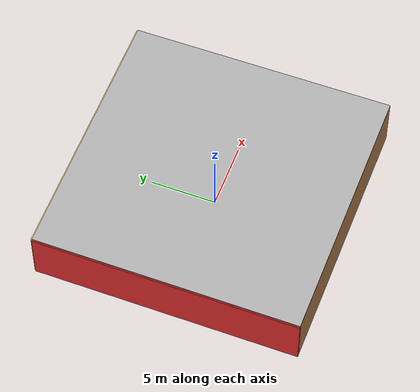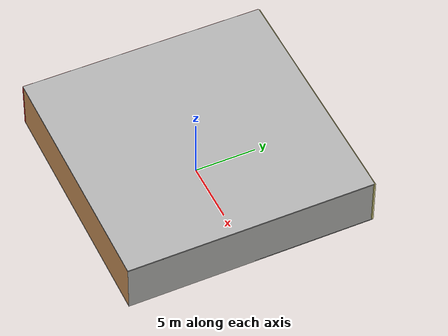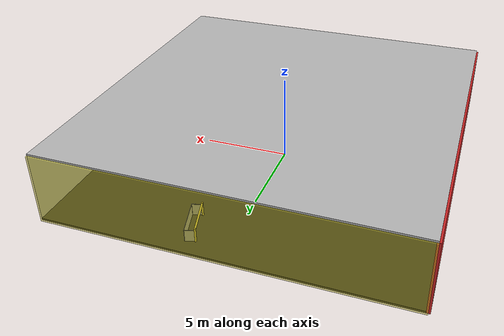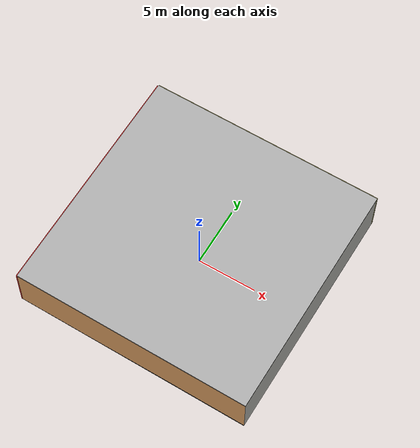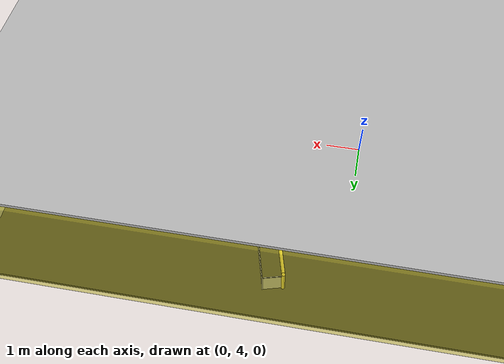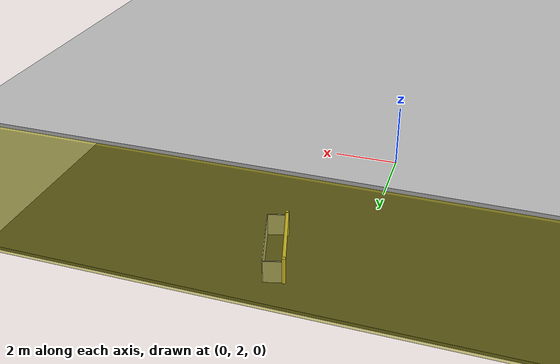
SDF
<sdf version="1.4">
 <world name="default">
  <physics type="ode">
   <max_step_size>0.001</max_step_size>
   <real_time_factor>1</real_time_factor>
   <real_time_update_rate>1000</real_time_update_rate>
   <gravity>0 0 -9.8</gravity>
  </physics>
  <scene><ambient>0.4 0.4 0.4 1</ambient><background>0.7 0.7 0.7 1</background><shadows>1</shadows></scene>
  <model name="Surrounding">
   <static>1</static>
   <link name="Ceiling">
    <collision name="Ceiling_Collision"><geometry><box><size>20 20 0.1</size></box></geometry></collision>
    <visual name="Ceiling_Visual">
     <geometry><box><size>20 20 0.1</size></box></geometry>
     <material>
      <script><uri>file://media/materials/scripts/gazebo.material</uri><name>Gazebo/PioneerBody</name></script>
     </material>
    </visual>
    <pose>0 0 4.05 0 0 0</pose>
   </link>
   <link name="Wall_South">
    <collision name="Wall_South_Collision">
     <geometry><box><size>20 0 4</size></box></geometry>
     <pose>0 0 2 0 -0 0</pose>
    </collision>
    <visual name="Wall_South_Visual">
     <pose>0 0 2 0 -0 0</pose>
     <geometry><box><size>20 0 4</size></box></geometry>
     <material>
      <script><uri>file://media/materials/scripts/gazebo.material</uri><name>Gazebo/WoodPallet</name></script>
     </material>
    </visual>
    <velocity_decay><linear>0</linear><angular>0</angular></velocity_decay>
    <pose>0 -10 0 0 -0 0</pose>
   </link>
   <link name="Wall_East">
    <collision name="Wall_21_Collision">
     <geometry><box><size>20 0 4</size></box></geometry>
     <pose>0 0 2 0 -0 0</pose>
    </collision>
    <visual name="Wall_21_Visual">
     <pose>0 0 2 0 -0 0</pose>
     <geometry><box><size>20 0 4</size></box></geometry>
     <material>
      <script><uri>file://media/materials/scripts/gazebo.material</uri><name>Gazebo/CeilingTiled</name></script>
     </material>
    </visual>
    <velocity_decay><linear>0</linear><angular>0</angular></velocity_decay>
    <pose>10 0 0 0 -0 1.5708</pose>
   </link>
   <link name="Wall_North">
    <collision name="Wall_22_Collision">
     <geometry><box><size>20 0.2 4</size></box></geometry>
     <pose>0 0 2 0 -0 0</pose>
    </collision>
    <visual name="Wall_22_Visual">
     <pose>0 0 2 0 -0 0</pose>
     <geometry><box><size>20 0.2 4</size></box></geometry>
     <material>
      <script>
       <uri>file://media/materials/scripts/gazebo.material</uri>
       <name>Gazebo/YellowTransparent</name>
      </script>
     </material>
    </visual>
    <velocity_decay><linear>0</linear><angular>0</angular></velocity_decay>
    <pose>0 10 0 0 -0 0</pose>
   </link>
   <link name="Wall_West">
    <collision name="Wall_23_Collision">
     <geometry><box><size>20 0.2 4</size></box></geometry>
     <pose>0 0 2 0 -0 0</pose>
    </collision>
    <visual name="Wall_23_Visual">
     <pose>0 0 2 0 -0 0</pose>
     <geometry><box><size>20 0.2 4</size></box></geometry>
     <material>
      <script><uri>file://media/materials/scripts/gazebo.material</uri><name>Gazebo/Red</name></script>
     </material>
    </visual>
    <velocity_decay><linear>0</linear><angular>0</angular></velocity_decay>
    <pose>-10 0 0 0 0 -1.5708</pose>
   </link>
   <link name="Ground_link">
    <collision name="collision">
     <pose>0 0 .05 0 -0 0</pose>
     <geometry><box><size>20 20 0.1</size></box></geometry>
    </collision>
    <visual name="visual">
     <pose>0 0 .05 0 -0 0</pose>
     <geometry><box><size>20 20 0.1</size></box></geometry>
     <material>
      <script><uri>file://media/materials/scripts/gazebo.material</uri><name>Gazebo/FlatBlack</name></script>
     </material>
    </visual>
   </link>
   <static>1</static>
  </model>
  <spherical_coordinates>
   <surface_model>EARTH_WGS84</surface_model>
   <latitude_deg>0</latitude_deg>
   <longitude_deg>0</longitude_deg>
   <elevation>0</elevation>
   <heading_deg>0</heading_deg>
  </spherical_coordinates>
  <light name="lightball_0" type="diffuse">
   <diffuse>0.8 0.8 0.8 1</diffuse>
   <specular>0.2 0.2 0.2 1</specular>
   <attenuation>
    <range>100</range>
    <constant>0.7</constant>
    <linear>0.01</linear>
    <quadratic>0.001</quadratic>
   </attenuation>
   <direction>-0.5 0.1 -0.9</direction>
   <pose>-2.5005998666 8.25666219338 0.761114876043 0 0 0</pose>
  </light>
  <light name="lightball_1" type="diffuse">
   <diffuse>0.8 0.8 0.8 1</diffuse>
   <specular>0.2 0.2 0.2 1</specular>
   <attenuation>
    <range>100</range>
    <constant>0.7</constant>
    <linear>0.01</linear>
    <quadratic>0.001</quadratic>
   </attenuation>
   <direction>-0.5 0.1 -0.9</direction>
   <pose>-1.05981942206 -9.22612729495 2.53616051525 0 0 0</pose>
  </light>
  <light name="lightball_2" type="diffuse">
   <diffuse>0.8 0.8 0.8 1</diffuse>
   <specular>0.2 0.2 0.2 1</specular>
   <attenuation>
    <range>100</range>
    <constant>0.7</constant>
    <linear>0.01</linear>
    <quadratic>0.001</quadratic>
   </attenuation>
   <direction>-0.5 0.1 -0.9</direction>
   <pose>-1.74734822604 7.8332485652 3.75118859989 0 0 0</pose>
  </light>
  <light name="lightball_3" type="diffuse">
   <diffuse>0.8 0.8 0.8 1</diffuse>
   <specular>0.2 0.2 0.2 1</specular>
   <attenuation>
    <range>100</range>
    <constant>0.7</constant>
    <linear>0.01</linear>
    <quadratic>0.001</quadratic>
   </attenuation>
   <direction>-0.5 0.1 -0.9</direction>
   <pose>3.51238275267 6.52715659755 1.5967411184 0 0 0</pose>
  </light>
  <light name="lightball_4" type="diffuse">
   <diffuse>0.8 0.8 0.8 1</diffuse>
   <specular>0.2 0.2 0.2 1</specular>
   <attenuation>
    <range>100</range>
    <constant>0.7</constant>
    <linear>0.01</linear>
    <quadratic>0.001</quadratic>
   </attenuation>
   <direction>-0.5 0.1 -0.9</direction>
   <pose>3.60145485211 5.81481281746 0.653890350153 0 0 0</pose>
  </light>
  <light name="lightball_5" type="diffuse">
   <diffuse>0.8 0.8 0.8 1</diffuse>
   <specular>0.2 0.2 0.2 1</specular>
   <attenuation>
    <range>100</range>
    <constant>0.7</constant>
    <linear>0.01</linear>
    <quadratic>0.001</quadratic>
   </attenuation>
   <direction>-0.5 0.1 -0.9</direction>
   <pose>8.75354196261 -5.92298245434 1.37075871865 0 0 0</pose>
  </light>
  <include>
   <uri>model://construction_cone</uri>
   <pose>-7.92756958915 -5.56721343559 0 0 0 1.64344848755</pose>
  </include>
  <include><uri>model://table</uri><pose>-0.57656628489 0.842580088162 0 0 0 2.7648138061</pose></include>
  <include>
   <uri>model://robocup_3Dsim_goal</uri>
   <pose>1.87203105426 8.05117430459 0 0 0 0.26790536888</pose>
  </include>
  <include>
   <uri>model://construction_cone</uri>
   <pose>4.65318252905 -2.08316898224 0 0 0 1.48890827629</pose>
  </include>
  <include><uri>model://cabinet</uri><pose>5.20695292096 0.354783945325 0 0 0 0.946859672268</pose></include>
 </world>
</sdf>

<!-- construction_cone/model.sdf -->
<sdf version="1.5">
  <model name="Construction Cone">
    <link name="link">
      <collision name="collision">
        <geometry>
          <mesh>
            <scale>10 10 10</scale>
            <uri>file://isr-testbed/construction_cone/meshes/construction_cone.dae</uri>
          </mesh>
        </geometry>
      </collision>
      <visual name="visual">
        <geometry>
          <mesh>
            <scale>10 10 10</scale>
            <uri>file://isr-testbed/construction_cone/meshes/construction_cone.dae</uri>
          </mesh>
        </geometry>
      </visual>
    </link>
  </model>
</sdf>

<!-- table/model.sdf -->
<sdf version="1.5">
  <model name="table">
    <static>true</static>
    <link name="link">
      <collision name="surface">
        <pose>0 0 1.0 0 0 0</pose>
        <geometry>
          <box>
            <size>1.5 0.8 0.03</size>
          </box>
        </geometry>
        <surface>
          <friction>
            <ode>
              <mu>0.6</mu>
              <mu2>0.6</mu2>
            </ode>
          </friction>
        </surface>
      </collision>
      <visual name="visual1">
        <pose>0 0 1.0 0 0 0</pose>
        <geometry>
          <box>
            <size>1.5 0.8 0.03</size>
          </box>
        </geometry>
        <material>
          <script>
            <uri>model://media/materials/scripts/gazebo.material</uri>
            <name>Gazebo/Wood</name>
          </script>
        </material>
      </visual>
      <collision name="front_left_leg">
        <pose>0.68 0.38 0.5 0 0 0</pose>
        <geometry>
          <cylinder>
            <radius>0.02</radius>
            <length>1.0</length>
          </cylinder>
        </geometry>
      </collision>
      <visual name="front_left_leg">
        <pose>0.68 0.38 0.5 0 0 0</pose>
        <geometry>
          <cylinder>
            <radius>0.02</radius>
            <length>1.0</length>
          </cylinder>
        </geometry>
        <material>
          <script>
            <uri>model://media/materials/scripts/gazebo.material</uri>
            <name>Gazebo/Grey</name>
          </script>
        </material>
      </visual>
      <collision name="front_right_leg">
        <pose>0.68 -0.38 0.5 0 0 0</pose>
        <geometry>
          <cylinder>
            <radius>0.02</radius>
            <length>1.0</length>
          </cylinder>
        </geometry>
      </collision>
      <visual name="front_right_leg">
        <pose>0.68 -0.38 0.5 0 0 0</pose>
        <geometry>
          <cylinder>
            <radius>0.02</radius>
            <length>1.0</length>
          </cylinder>
        </geometry>
        <material>
          <script>
            <uri>model://media/materials/scripts/gazebo.material</uri>
            <name>Gazebo/Grey</name>
          </script>
        </material>
      </visual>
      <collision name="back_right_leg">
        <pose>-0.68 -0.38 0.5 0 0 0</pose>
        <geometry>
          <cylinder>
            <radius>0.02</radius>
            <length>1.0</length>
          </cylinder>
        </geometry>
      </collision>
      <visual name="back_right_leg">
        <pose>-0.68 -0.38 0.5 0 0 0</pose>
        <geometry>
          <cylinder>
            <radius>0.02</radius>
            <length>1.0</length>
          </cylinder>
        </geometry>
        <material>
          <script>
            <uri>model://media/materials/scripts/gazebo.material</uri>
            <name>Gazebo/Grey</name>
          </script>
        </material>
      </visual>
      <collision name="back_left_leg">
        <pose>-0.68 0.38 0.5 0 0 0</pose>
        <geometry>
          <cylinder>
            <radius>0.02</radius>
            <length>1.0</length>
          </cylinder>
        </geometry>
      </collision>
      <visual name="back_left_leg">
        <pose>-0.68 0.38 0.5 0 0 0</pose>
        <geometry>
          <cylinder>
            <radius>0.02</radius>
            <length>1.0</length>
          </cylinder>
        </geometry>
        <material>
          <script>
            <uri>model://media/materials/scripts/gazebo.material</uri>
            <name>Gazebo/Grey</name>
          </script>
        </material>
      </visual>
    </link>
  </model>
</sdf>

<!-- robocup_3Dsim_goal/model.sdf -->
<sdf version="1.5">
  <model name="robocup_3d_goal">
    <static>true</static>
    <link name="left_post">
      <pose>0 1.05 0.45 0 0 0</pose>
      <collision name="collision">
        <geometry>
          <cylinder>
            <radius>0.05</radius>
            <length>0.9</length>
          </cylinder>
        </geometry>
      </collision>
      <visual name="visual">
        <geometry>
          <cylinder>
            <radius>0.05</radius>
            <length>0.9</length>
          </cylinder>
        </geometry>
        <material>
          <script>
            <uri>file://media/materials/scripts/gazebo.material</uri>
            <name>Gazebo/ZincYellow</name>
          </script>
        </material>
      </visual>
    </link>
    <link name="left_support_horiz_lower">
      <pose>0.30 1.05 0.01 0 0 0</pose>
      <collision name="collision">
        <geometry>
          <box>
            <size>0.50 0.02 0.02</size>
          </box>
        </geometry>
      </collision>
      <visual name="visual">
        <geometry>
          <box>
            <size>0.50 0.02 0.02</size>
          </box>
        </geometry>
        <material>
          <script>
            <uri>file://media/materials/scripts/gazebo.material</uri>
            <name>Gazebo/White</name>
          </script>
        </material>
      </visual>
    </link>
    <link name="left_support_horiz_upper">
      <pose>0.30 1.05 0.79 0 0 0</pose>
      <collision name="collision">
        <geometry>
          <box>
            <size>0.50 0.02 0.02</size>
          </box>
        </geometry>
      </collision>
      <visual name="visual">
        <geometry>
          <box>
            <size>0.50 0.02 0.02</size>
          </box>
        </geometry>
        <material>
          <script>
            <uri>file://media/materials/scripts/gazebo.material</uri>
            <name>Gazebo/White</name>
          </script>
        </material>
      </visual>
    </link>
    <link name="left_support_vertical">
      <pose>0.56 1.05 0.4 0 1.5708 0</pose>
      <collision name="collision">
        <geometry>
          <box>
            <size>0.80 0.02 0.02</size>
          </box>
        </geometry>
      </collision>
      <visual name="visual">
        <geometry>
          <box>
            <size>0.80 0.02 0.02</size>
          </box>
        </geometry>
        <material>
          <script>
            <uri>file://media/materials/scripts/gazebo.material</uri>
            <name>Gazebo/White</name>
          </script>
        </material>
      </visual>
    </link>
    <link name="right_support_horiz_lower">
      <pose>0.30 -1.05 0.01 0 0 0</pose>
      <collision name="collision">
        <geometry>
          <box>
            <size>0.50 0.02 0.02</size>
          </box>
        </geometry>
      </collision>
      <visual name="visual">
        <geometry>
          <box>
            <size>0.50 0.02 0.02</size>
          </box>
        </geometry>
        <material>
          <script>
            <uri>file://media/materials/scripts/gazebo.material</uri>
            <name>Gazebo/White</name>
          </script>
        </material>
      </visual>
    </link>
    <link name="right_support_horiz_upper">
      <pose>0.30 -1.05 0.79 0 0 0</pose>
      <collision name="collision">
        <geometry>
          <box>
            <size>0.50 0.02 0.02</size>
          </box>
        </geometry>
      </collision>
      <visual name="visual">
        <geometry>
          <box>
            <size>0.50 0.02 0.02</size>
          </box>
        </geometry>
        <material>
          <script>
            <uri>file://media/materials/scripts/gazebo.material</uri>
            <name>Gazebo/White</name>
          </script>
        </material>
      </visual>
    </link>
    <link name="right_support_vertical">
      <pose>0.56 -1.05 0.4 0 1.5708 0</pose>
      <collision name="collision">
        <geometry>
          <box>
            <size>0.80 0.02 0.02</size>
          </box>
        </geometry>
      </collision>
      <visual name="visual">
        <geometry>
          <box>
            <size>0.80 0.02 0.02</size>
          </box>
        </geometry>
        <material>
          <script>
            <uri>file://media/materials/scripts/gazebo.material</uri>
            <name>Gazebo/White</name>
          </script>
        </material>
      </visual>
    </link>
    <link name="center_support_horiz_lower">
      <pose>0.56 0 0.01 0 1.5708 0</pose>
      <collision name="collision">
        <geometry>
          <box>
            <size>0.02 2.08 0.02</size>
          </box>
        </geometry>
      </collision>
      <visual name="visual">
        <geometry>
          <box>
            <size>0.02 2.08 0.02</size>
          </box>
        </geometry>
        <material>
          <script>
            <uri>file://media/materials/scripts/gazebo.material</uri>
            <name>Gazebo/White</name>
          </script>
        </material>
      </visual>
    </link>
    <link name="center_support_horiz_upper">
      <pose>0.56 0 0.79 0 1.5708 0</pose>
      <collision name="collision">
        <geometry>
          <box>
            <size>0.02 2.08 0.02</size>
          </box>
        </geometry>
      </collision>
      <visual name="visual">
        <geometry>
          <box>
            <size>0.02 2.08 0.02</size>
          </box>
        </geometry>
        <material>
          <script>
            <uri>file://media/materials/scripts/gazebo.material</uri>
            <name>Gazebo/White</name>
          </script>
        </material>
      </visual>
    </link>
    <link name="right_post">
      <pose>0 -1.05 0.45 0 0 0</pose>
      <collision name="collision">
        <geometry>
          <cylinder>
            <radius>0.05</radius>
            <length>0.9</length>
          </cylinder>
        </geometry>
      </collision>
      <visual name="visual">
        <geometry>
          <cylinder>
            <radius>0.05</radius>
            <length>0.9</length>
          </cylinder>
        </geometry>
        <material>
          <script>
            <uri>file://media/materials/scripts/gazebo.material</uri>
            <name>Gazebo/ZincYellow</name>
          </script>
        </material>
      </visual>
    </link>
    <link name="crossbar">
      <pose>0 0 0.85 1.57 1.57 0</pose>
      <collision name="collision">
        <geometry>
          <cylinder>
            <radius>0.05</radius>
            <length>2.0</length>
          </cylinder>
        </geometry>
      </collision>
      <visual name="visual">
        <geometry>
          <cylinder>
            <radius>0.05</radius>
            <length>2.0</length>
          </cylinder>
        </geometry>
        <material>
          <script>
            <uri>file://media/materials/scripts/gazebo.material</uri>
            <name>Gazebo/ZincYellow</name>
          </script>
        </material>
      </visual>
    </link>
    <link name="center_net">
      <pose>0.56 0 0.40 0 0 0</pose>
      <collision name="collision">
        <geometry>
          <box>
            <size>0.01 2.1 0.80</size>
          </box>
        </geometry>
      </collision>
      <visual name="visual">
        <geometry>
          <box>
            <size>0.01 2.1 0.80</size>
          </box>
        </geometry>
        <material>
          <script>
            <uri>model://../model_source/models/robocup09_spl_field/materials/scripts/</uri>
            <uri>model://../model_source/models/robocup09_spl_field/materials/textures/</uri>
            <name>RoboCup/Net</name>
          </script>
        </material>
      </visual>
    </link>
    <link name="left_net">
      <pose>0.30 1.05 0.40 0 0 0</pose>
      <collision name="collision">
        <geometry>
          <box>
            <size>0.50 0.01 0.76</size>
          </box>
        </geometry>
      </collision>
      <visual name="visual">
        <geometry>
          <box>
            <size>0.50 0.01 0.76</size>
          </box>
        </geometry>
        <material>
          <script>
            <uri>model://../model_source/models/robocup09_spl_field/materials/scripts/</uri>
            <uri>model://../model_source/models/robocup09_spl_field/materials/textures/</uri>
            <name>RoboCup/Net</name>
          </script>
        </material>
      </visual>
    </link>
    <link name="right_net">
      <pose>0.30 -1.05 0.40 0 0 0</pose>
      <collision name="collision">
        <geometry>
          <box>
            <size>0.50 0.01 0.76</size>
          </box>
        </geometry>
      </collision>
      <visual name="visual">
        <geometry>
          <box>
            <size>0.50 0.01 0.76</size>
          </box>
        </geometry>
        <material>
          <script>
            <uri>model://../model_source/models/robocup09_spl_field/materials/scripts/</uri>
            <uri>model://../model_source/models/robocup09_spl_field/materials/textures/</uri>
            <name>RoboCup/Net</name>
          </script>
        </material>
      </visual>
    </link>
  </model>
</sdf>

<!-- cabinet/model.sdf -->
<sdf version="1.5">
  <model name="cabinet">
    <static>true</static>
    <link name="cabinet_bottom_plate">
      <inertial>
        <pose>0 0 -1 0 0 0</pose>
        <inertia>
          <ixx>2.050000</ixx>
          <ixy>0</ixy>
          <ixz>0</ixz>
          <iyy>2.050000</iyy>
          <iyz>0</iyz>
          <izz>2.050000</izz>
        </inertia>
        <mass>25.000000</mass>
      </inertial>
      <collision name="cabinet_bottom_plate_geom">
        <pose>0 0 0.010000 0 0 0</pose>
        <geometry>
          <box>
            <size>0.450000 0.450000 0.020000</size>
          </box>
        </geometry>
      </collision>
      <visual name="cabinet_bottom_plate_geom_visual">
        <pose>0 0 0.010000 0 0 0</pose>
        <geometry>
          <box>
            <size>0.450000 0.450000 0.020000</size>
          </box>
        </geometry>
        <material>
          <script>
            <uri>model://media/materials/scripts/gazebo.material</uri>
            <name>Gazebo/Wood</name>
          </script>
        </material>
      </visual>
      <collision name="cabinet_bottom_plate_geom_cabinet_back_plate">
        <pose>0.235000 0 0.510000 0 0 0</pose>
        <geometry>
          <box>
            <size>0.020000 0.450000 1.020000</size>
          </box>
        </geometry>
      </collision>
      <visual name="cabinet_bottom_plate_geom_cabinet_back_plate_visual">
        <pose>0.235000 0 0.510000 0 0 0</pose>
        <geometry>
          <box>
            <size>0.020000 0.450000 1.020000</size>
          </box>
        </geometry>
        <material>
          <script>
            <uri>model://media/materials/scripts/gazebo.material</uri>
            <name>Gazebo/Wood</name>
          </script>
        </material>
      </visual>
      <collision name="cabinet_bottom_plate_geom_cabinet_left_plate">
        <pose>0 0.235000 0.510000 0 0 0</pose>
        <geometry>
          <box>
            <size>0.450000 0.020000 1.020000</size>
          </box>
        </geometry>
      </collision>
      <visual name="cabinet_bottom_plate_geom_cabinet_left_plate_visual">
        <pose>0 0.235000 0.510000 0 0 0</pose>
        <geometry>
          <box>
            <size>0.450000 0.020000 1.020000</size>
          </box>
        </geometry>
        <material>
          <script>
            <uri>model://media/materials/scripts/gazebo.material</uri>
            <name>Gazebo/Wood</name>
          </script>
        </material>
      </visual>
      <collision name="cabinet_bottom_plate_geom_cabinet_middle_plate">
        <pose>0 0 0.510000 0 0 0</pose>
        <geometry>
          <box>
            <size>0.450000 0.450000 0.020000</size>
          </box>
        </geometry>
      </collision>
      <visual name="cabinet_bottom_plate_geom_cabinet_middle_plate_visual">
        <pose>0 0 0.510000 0 0 0</pose>
        <geometry>
          <box>
            <size>0.450000 0.450000 0.020000</size>
          </box>
        </geometry>
        <material>
          <script>
            <uri>model://media/materials/scripts/gazebo.material</uri>
            <name>Gazebo/Wood</name>
          </script>
        </material>
      </visual>
      <collision name="cabinet_bottom_plate_geom_cabinet_right_plate">
        <pose>0 -0.235000 0.510000 0 0 0</pose>
        <geometry>
          <box>
            <size>0.450000 0.020000 1.020000</size>
          </box>
        </geometry>
      </collision>
      <visual name="cabinet_bottom_plate_geom_cabinet_right_plate_visual">
        <pose>0 -0.235000 0.510000 0 0 0</pose>
        <geometry>
          <box>
            <size>0.450000 0.020000 1.020000</size>
          </box>
        </geometry>
        <material>
          <script>
            <uri>model://media/materials/scripts/gazebo.material</uri>
            <name>Gazebo/Wood</name>
          </script>
        </material>
      </visual>
      <collision name="cabinet_bottom_plate_geom_cabinet_top_plate">
        <pose>0 0 1.010000 0 0 0</pose>
        <geometry>
          <box>
            <size>0.450000 0.450000 0.020000</size>
          </box>
        </geometry>
      </collision>
      <visual name="cabinet_bottom_plate_geom_cabinet_top_plate_visual">
        <pose>0 0 1.010000 0 0 0</pose>
        <geometry>
          <box>
            <size>0.450000 0.450000 0.020000</size>
          </box>
        </geometry>
        <material>
          <script>
            <uri>model://media/materials/scripts/gazebo.material</uri>
            <name>Gazebo/Wood</name>
          </script>
        </material>
      </visual>
    </link>
  </model>
</sdf>
